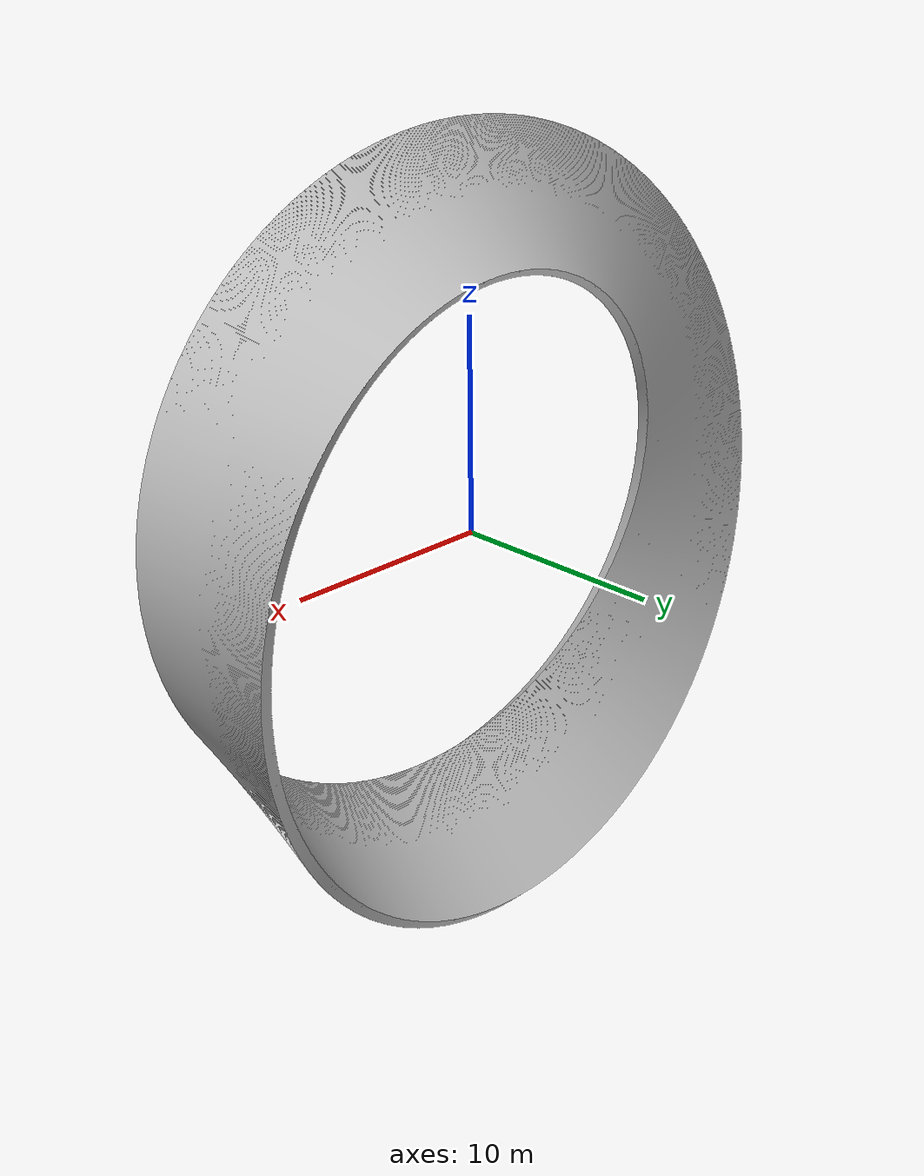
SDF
<?xml version='1.0'?>
<sdf version='1.4'>
<model name="Mobius">
  <pose>0 0 0  1.57 0 0</pose>
  <static>true</static>
  <link name="body">
      <visual name="visual">
          <geometry>
              <mesh>
                <uri>model://Mobius/mobius.dae</uri>
                <scale>0.5 0.5 0.5</scale>
              </mesh>
          </geometry>
      </visual>
      <collision name="mobius">
          <geometry>
              <mesh>
                <uri>model://Mobius/mobius.dae</uri>
                <scale>0.5 0.5 0.5</scale>
              </mesh>
          </geometry>
      </collision>
  </link>
</model>
</sdf>
